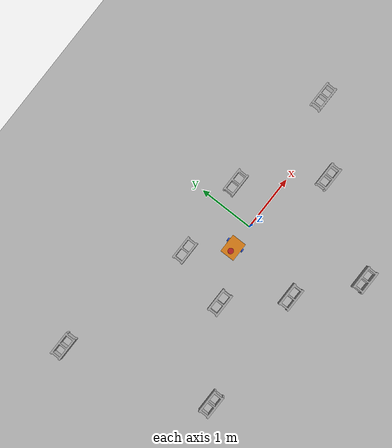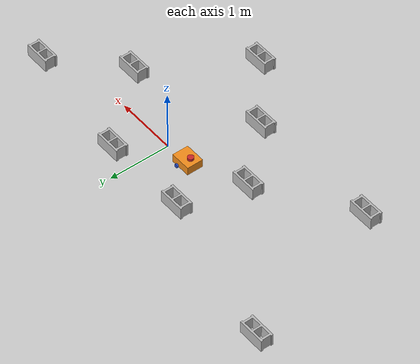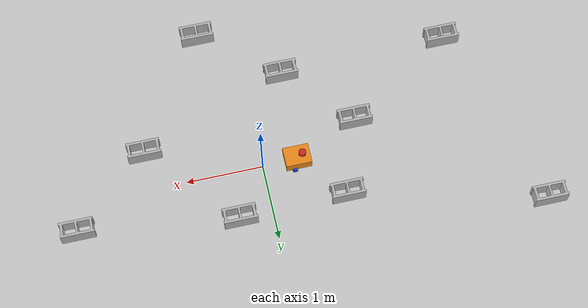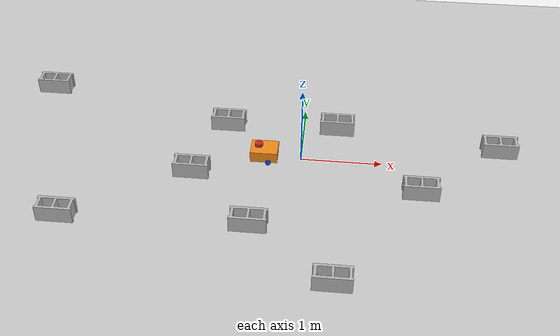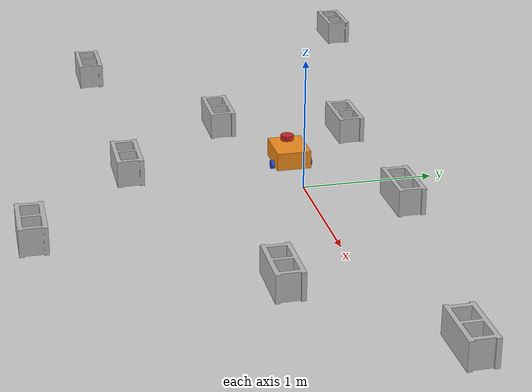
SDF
<sdf version="1.7">
 <world name="default">
  <light name="sun" type="directional">
   <pose>0 0 10 0 -0 0</pose>
   <diffuse>0.8 0.8 0.8 1</diffuse>
   <specular>0.2 0.2 0.2 1</specular>
   <attenuation>
    <range>1000</range>
    <constant>0.9</constant>
    <linear>0.01</linear>
    <quadratic>0.001</quadratic>
   </attenuation>
   <direction>-0.5 0.1 -0.9</direction>
   <spot><inner_angle>0</inner_angle><outer_angle>0</outer_angle><falloff>0</falloff></spot>
  </light>
  <model name="ground_plane">
   <static>1</static>
   <link name="link">
    <collision name="collision">
     <geometry><plane><normal>0 0 1</normal><size>100 100</size></plane></geometry>
     <surface>
      <contact><collide_bitmask>65535</collide_bitmask></contact>
      <friction><ode><mu>100</mu><mu2>50</mu2></ode></friction>
     </surface>
    </collision>
    <visual name="visual">
     <cast_shadows>0</cast_shadows>
     <geometry><plane><normal>0 0 1</normal><size>100 100</size></plane></geometry>
     <material>
      <script><uri>file://media/materials/scripts/gazebo.material</uri><name>Gazebo/Grey</name></script>
     </material>
    </visual>
   </link>
  </model>
  <gravity>0 0 -9.8</gravity>
  <magnetic_field>6e-06 2.3e-05 -4.2e-05</magnetic_field>
  <atmosphere type="adiabatic"/>
  <physics type="ode">
   <max_step_size>0.001</max_step_size>
   <real_time_factor>1</real_time_factor>
   <real_time_update_rate>1000</real_time_update_rate>
  </physics>
  <scene><ambient>0.4 0.4 0.4 1</ambient><background>0.7 0.7 0.7 1</background><shadows>1</shadows></scene>
  <audio><device>default</device></audio>
  <spherical_coordinates>
   <surface_model>EARTH_WGS84</surface_model>
   <latitude_deg>0</latitude_deg>
   <longitude_deg>0</longitude_deg>
   <elevation>0</elevation>
   <heading_deg>0</heading_deg>
  </spherical_coordinates>
  <model name="my_bot">
   <link name="base_link">
    <inertial>
     <pose>-0.071082 0 0.075033 0 -0 0</pose>
     <mass>0.61</mass>
     <inertia>
      <ixx>0.00482981</ixx>
      <ixy>0</ixy>
      <ixz>0.000516598</ixz>
      <iyy>0.00702444</iyy>
      <iyz>0</iyz>
      <izz>0.0081721</izz>
     </inertia>
    </inertial>
    <collision name="base_link_fixed_joint_lump__chassis_collision">
     <pose>-0.0585 0 0.059 0 -0 0</pose>
     <geometry><box><size>0.335 0.265 0.138</size></box></geometry>
    </collision>
    <collision name="base_link_fixed_joint_lump__caster_wheel_collision_1">
     <pose>-0.151 0 -0.023 0 -0 0</pose>
     <geometry><sphere><radius>0.01</radius></sphere></geometry>
     <surface><friction><ode><mu>0.001</mu><mu2>0.001</mu2></ode></friction></surface>
    </collision>
    <collision name="base_link_fixed_joint_lump__laser_frame_collision_2">
     <pose>-0.126 0 0.165 0 -0 0</pose>
     <geometry><cylinder><length>0.04</length><radius>0.05</radius></cylinder></geometry>
    </collision>
    <visual name="base_link_fixed_joint_lump__chassis_visual">
     <pose>-0.0585 0 0.059 0 -0 0</pose>
     <geometry><box><size>0.335 0.265 0.138</size></box></geometry>
     <material>
      <script><name>Gazebo/Orange</name><uri>file://media/materials/scripts/gazebo.material</uri></script>
     </material>
    </visual>
    <visual name="base_link_fixed_joint_lump__caster_wheel_visual_1">
     <pose>-0.151 0 -0.023 0 -0 0</pose>
     <geometry><sphere><radius>0.01</radius></sphere></geometry>
     <material>
      <script><name>Gazebo/White</name><uri>file://media/materials/scripts/gazebo.material</uri></script>
     </material>
    </visual>
    <visual name="base_link_fixed_joint_lump__laser_frame_visual_2">
     <pose>-0.126 0 0.165 0 -0 0</pose>
     <geometry><cylinder><length>0.04</length><radius>0.05</radius></cylinder></geometry>
     <material>
      <script><name>Gazebo/Red</name><uri>file://media/materials/scripts/gazebo.material</uri></script>
     </material>
    </visual>
    <sensor name="laser" type="ray">
     <visualize>1</visualize>
     <update_rate>10</update_rate>
     <ray>
      <scan>
       <horizontal>
        <samples>360</samples>
        <min_angle>-3.14</min_angle>
        <max_angle>3.14</max_angle>
        <resolution>1</resolution>
       </horizontal>
       <vertical><samples>1</samples><min_angle>0</min_angle><max_angle>0</max_angle></vertical>
      </scan>
      <range><min>0.3</min><max>12</max></range>
     </ray>
     <plugin name="laser_controller" filename="libgazebo_ros_ray_sensor.so">
      <ros><argument>~/out:=scan</argument></ros>
      <output_type>sensor_msgs/LaserScan</output_type>
      <frame_name>laser_frame</frame_name>
     </plugin>
     <pose>-0.126 0 0.165 0 -0 0</pose>
    </sensor>
   </link>
   <joint name="left_wheel_joint" type="revolute">
    <pose relative_to="base_link">0 0.1485 0 -1.5708 0 0</pose>
    <parent>base_link</parent>
    <child>left_wheel</child>
    <axis>
     <xyz>0 0 1</xyz>
     <limit><lower>-1e+16</lower><upper>1e+16</upper></limit>
     <dynamics><spring_reference>0</spring_reference><spring_stiffness>0</spring_stiffness></dynamics>
    </axis>
   </joint>
   <link name="left_wheel">
    <pose relative_to="left_wheel_joint">0 0 0 0 -0 0</pose>
    <inertial>
     <mass>0.05</mass>
     <inertia>
      <ixx>1.64292e-05</ixx>
      <ixy>0</ixy>
      <ixz>0</ixz>
      <iyy>1.64292e-05</iyy>
      <iyz>0</iyz>
      <izz>2.7225e-05</izz>
     </inertia>
    </inertial>
    <collision name="left_wheel_collision">
     <geometry><sphere><radius>0.033</radius></sphere></geometry>
    </collision>
    <visual name="left_wheel_visual">
     <geometry><cylinder><length>0.026</length><radius>0.033</radius></cylinder></geometry>
     <material>
      <script><name>Gazebo/Blue</name><uri>file://media/materials/scripts/gazebo.material</uri></script>
     </material>
    </visual>
   </link>
   <joint name="right_wheel_joint" type="revolute">
    <pose relative_to="base_link">0 -0.1485 0 1.5708 -0 0</pose>
    <parent>base_link</parent>
    <child>right_wheel</child>
    <axis>
     <xyz>0 0 -1</xyz>
     <limit><lower>-1e+16</lower><upper>1e+16</upper></limit>
     <dynamics><spring_reference>0</spring_reference><spring_stiffness>0</spring_stiffness></dynamics>
    </axis>
   </joint>
   <link name="right_wheel">
    <pose relative_to="right_wheel_joint">0 0 0 0 -0 0</pose>
    <inertial>
     <mass>0.05</mass>
     <inertia>
      <ixx>1.64292e-05</ixx>
      <ixy>0</ixy>
      <ixz>0</ixz>
      <iyy>1.64292e-05</iyy>
      <iyz>0</iyz>
      <izz>2.7225e-05</izz>
     </inertia>
    </inertial>
    <collision name="right_wheel_collision">
     <geometry><sphere><radius>0.033</radius></sphere></geometry>
    </collision>
    <visual name="right_wheel_visual">
     <geometry><cylinder><length>0.026</length><radius>0.033</radius></cylinder></geometry>
     <material>
      <script><name>Gazebo/Blue</name><uri>file://media/materials/scripts/gazebo.material</uri></script>
     </material>
    </visual>
   </link>
   <static>0</static>
   <plugin name="diff_drive" filename="libgazebo_ros_diff_drive.so">
    <left_joint>left_wheel_joint</left_joint>
    <right_joint>right_wheel_joint</right_joint>
    <wheel_separation>0.35</wheel_separation>
    <wheel_diameter>0.1</wheel_diameter>
    <max_wheel_torque>200</max_wheel_torque>
    <max_wheel_acceleration>10.0</max_wheel_acceleration>
    <odometry_frame>odom</odometry_frame>
    <robot_base_frame>base_link</robot_base_frame>
    <publish_odom>1</publish_odom>
    <publish_odom_tf>1</publish_odom_tf>
    <publish_wheel_tf>1</publish_wheel_tf>
   </plugin>
   <pose>-0.394195 0.001224 0.032996 0 2.5e-05 0.003197</pose>
  </model>
  <model name="cinder_block">
   <link name="link">
    <inertial>
     <pose>0 0 0.1016 0 -0 0</pose>
     <mass>5</mass>
     <inertia>
      <ixx>0.028705</ixx>
      <ixy>0</ixy>
      <iyy>0.073708</iyy>
      <ixz>0</ixz>
      <iyz>0</iyz>
      <izz>0.06908</izz>
     </inertia>
    </inertial>
    <visual name="visual">
     <geometry><mesh><uri>model://cinder_block/meshes/cinder_block.dae</uri></mesh></geometry>
    </visual>
    <collision name="left">
     <pose>0 -0.08465 0.1016 0 -0 0</pose>
     <geometry><box><size>0.43495 0.0339 0.2032</size></box></geometry>
     <surface>
      <contact><ode><max_vel>0.1</max_vel><min_depth>0.001</min_depth></ode></contact>
      <friction><ode><mu>1</mu><mu2>1</mu2></ode></friction>
     </surface>
    </collision>
    <collision name="right">
     <pose>0 0.08465 0.1016 0 -0 0</pose>
     <geometry><box><size>0.43495 0.0339 0.2032</size></box></geometry>
     <surface>
      <contact><ode><max_vel>0.1</max_vel><min_depth>0.001</min_depth></ode></contact>
      <friction><ode><mu>1</mu><mu2>1</mu2></ode></friction>
     </surface>
    </collision>
    <collision name="front">
     <pose>0.18625 0 0.1016 0 -0 0</pose>
     <geometry><box><size>0.0339 0.1354 0.203</size></box></geometry>
     <surface>
      <contact><ode><max_vel>0.1</max_vel><min_depth>0.001</min_depth></ode></contact>
      <friction><ode><mu>1</mu><mu2>1</mu2></ode></friction>
     </surface>
    </collision>
    <collision name="middle">
     <pose>0 0 0.1016 0 -0 0</pose>
     <geometry><box><size>0.0339 0.1354 0.203</size></box></geometry>
     <surface>
      <contact><ode><max_vel>0.1</max_vel><min_depth>0.001</min_depth></ode></contact>
      <friction><ode><mu>1</mu><mu2>1</mu2></ode></friction>
     </surface>
    </collision>
    <collision name="back">
     <pose>-0.18625 0 0.1016 0 -0 0</pose>
     <geometry><box><size>0.0339 0.1354 0.203</size></box></geometry>
     <surface>
      <contact><ode><max_vel>0.1</max_vel><min_depth>0.001</min_depth></ode></contact>
      <friction><ode><mu>1</mu><mu2>1</mu2></ode></friction>
     </surface>
    </collision>
   </link>
   <pose>-0.977687 0.600716 -6e-06 -1e-06 2.8e-05 -0</pose>
  </model>
  <model name="cinder_block_0">
   <link name="link">
    <inertial>
     <pose>0 0 0.1016 0 -0 0</pose>
     <mass>5</mass>
     <inertia>
      <ixx>0.028705</ixx>
      <ixy>0</ixy>
      <iyy>0.073708</iyy>
      <ixz>0</ixz>
      <iyz>0</iyz>
      <izz>0.06908</izz>
     </inertia>
    </inertial>
    <visual name="visual">
     <geometry><mesh><uri>model://cinder_block/meshes/cinder_block.dae</uri></mesh></geometry>
    </visual>
    <collision name="left">
     <pose>0 -0.08465 0.1016 0 -0 0</pose>
     <geometry><box><size>0.43495 0.0339 0.2032</size></box></geometry>
     <surface>
      <contact><ode><max_vel>0.1</max_vel><min_depth>0.001</min_depth></ode></contact>
      <friction><ode><mu>1</mu><mu2>1</mu2></ode></friction>
     </surface>
    </collision>
    <collision name="right">
     <pose>0 0.08465 0.1016 0 -0 0</pose>
     <geometry><box><size>0.43495 0.0339 0.2032</size></box></geometry>
     <surface>
      <contact><ode><max_vel>0.1</max_vel><min_depth>0.001</min_depth></ode></contact>
      <friction><ode><mu>1</mu><mu2>1</mu2></ode></friction>
     </surface>
    </collision>
    <collision name="front">
     <pose>0.18625 0 0.1016 0 -0 0</pose>
     <geometry><box><size>0.0339 0.1354 0.203</size></box></geometry>
     <surface>
      <contact><ode><max_vel>0.1</max_vel><min_depth>0.001</min_depth></ode></contact>
      <friction><ode><mu>1</mu><mu2>1</mu2></ode></friction>
     </surface>
    </collision>
    <collision name="middle">
     <pose>0 0 0.1016 0 -0 0</pose>
     <geometry><box><size>0.0339 0.1354 0.203</size></box></geometry>
     <surface>
      <contact><ode><max_vel>0.1</max_vel><min_depth>0.001</min_depth></ode></contact>
      <friction><ode><mu>1</mu><mu2>1</mu2></ode></friction>
     </surface>
    </collision>
    <collision name="back">
     <pose>-0.18625 0 0.1016 0 -0 0</pose>
     <geometry><box><size>0.0339 0.1354 0.203</size></box></geometry>
     <surface>
      <contact><ode><max_vel>0.1</max_vel><min_depth>0.001</min_depth></ode></contact>
      <friction><ode><mu>1</mu><mu2>1</mu2></ode></friction>
     </surface>
    </collision>
   </link>
   <pose>-1.30271 -0.390411 -6e-06 -1e-06 2.8e-05 -0</pose>
  </model>
  <model name="cinder_block_1">
   <link name="link">
    <inertial>
     <pose>0 0 0.1016 0 -0 0</pose>
     <mass>5</mass>
     <inertia>
      <ixx>0.028705</ixx>
      <ixy>0</ixy>
      <iyy>0.073708</iyy>
      <ixz>0</ixz>
      <iyz>0</iyz>
      <izz>0.06908</izz>
     </inertia>
    </inertial>
    <visual name="visual">
     <geometry><mesh><uri>model://cinder_block/meshes/cinder_block.dae</uri></mesh></geometry>
    </visual>
    <collision name="left">
     <pose>0 -0.08465 0.1016 0 -0 0</pose>
     <geometry><box><size>0.43495 0.0339 0.2032</size></box></geometry>
     <surface>
      <contact><ode><max_vel>0.1</max_vel><min_depth>0.001</min_depth></ode></contact>
      <friction><ode><mu>1</mu><mu2>1</mu2></ode></friction>
     </surface>
    </collision>
    <collision name="right">
     <pose>0 0.08465 0.1016 0 -0 0</pose>
     <geometry><box><size>0.43495 0.0339 0.2032</size></box></geometry>
     <surface>
      <contact><ode><max_vel>0.1</max_vel><min_depth>0.001</min_depth></ode></contact>
      <friction><ode><mu>1</mu><mu2>1</mu2></ode></friction>
     </surface>
    </collision>
    <collision name="front">
     <pose>0.18625 0 0.1016 0 -0 0</pose>
     <geometry><box><size>0.0339 0.1354 0.203</size></box></geometry>
     <surface>
      <contact><ode><max_vel>0.1</max_vel><min_depth>0.001</min_depth></ode></contact>
      <friction><ode><mu>1</mu><mu2>1</mu2></ode></friction>
     </surface>
    </collision>
    <collision name="middle">
     <pose>0 0 0.1016 0 -0 0</pose>
     <geometry><box><size>0.0339 0.1354 0.203</size></box></geometry>
     <surface>
      <contact><ode><max_vel>0.1</max_vel><min_depth>0.001</min_depth></ode></contact>
      <friction><ode><mu>1</mu><mu2>1</mu2></ode></friction>
     </surface>
    </collision>
    <collision name="back">
     <pose>-0.18625 0 0.1016 0 -0 0</pose>
     <geometry><box><size>0.0339 0.1354 0.203</size></box></geometry>
     <surface>
      <contact><ode><max_vel>0.1</max_vel><min_depth>0.001</min_depth></ode></contact>
      <friction><ode><mu>1</mu><mu2>1</mu2></ode></friction>
     </surface>
    </collision>
   </link>
   <pose>0.425948 0.633581 -6e-06 -1e-06 2.8e-05 -0</pose>
  </model>
  <model name="cinder_block_2">
   <link name="link">
    <inertial>
     <pose>0 0 0.1016 0 -0 0</pose>
     <mass>5</mass>
     <inertia>
      <ixx>0.028705</ixx>
      <ixy>0</ixy>
      <iyy>0.073708</iyy>
      <ixz>0</ixz>
      <iyz>0</iyz>
      <izz>0.06908</izz>
     </inertia>
    </inertial>
    <visual name="visual">
     <geometry><mesh><uri>model://cinder_block/meshes/cinder_block.dae</uri></mesh></geometry>
    </visual>
    <collision name="left">
     <pose>0 -0.08465 0.1016 0 -0 0</pose>
     <geometry><box><size>0.43495 0.0339 0.2032</size></box></geometry>
     <surface>
      <contact><ode><max_vel>0.1</max_vel><min_depth>0.001</min_depth></ode></contact>
      <friction><ode><mu>1</mu><mu2>1</mu2></ode></friction>
     </surface>
    </collision>
    <collision name="right">
     <pose>0 0.08465 0.1016 0 -0 0</pose>
     <geometry><box><size>0.43495 0.0339 0.2032</size></box></geometry>
     <surface>
      <contact><ode><max_vel>0.1</max_vel><min_depth>0.001</min_depth></ode></contact>
      <friction><ode><mu>1</mu><mu2>1</mu2></ode></friction>
     </surface>
    </collision>
    <collision name="front">
     <pose>0.18625 0 0.1016 0 -0 0</pose>
     <geometry><box><size>0.0339 0.1354 0.203</size></box></geometry>
     <surface>
      <contact><ode><max_vel>0.1</max_vel><min_depth>0.001</min_depth></ode></contact>
      <friction><ode><mu>1</mu><mu2>1</mu2></ode></friction>
     </surface>
    </collision>
    <collision name="middle">
     <pose>0 0 0.1016 0 -0 0</pose>
     <geometry><box><size>0.0339 0.1354 0.203</size></box></geometry>
     <surface>
      <contact><ode><max_vel>0.1</max_vel><min_depth>0.001</min_depth></ode></contact>
      <friction><ode><mu>1</mu><mu2>1</mu2></ode></friction>
     </surface>
    </collision>
    <collision name="back">
     <pose>-0.18625 0 0.1016 0 -0 0</pose>
     <geometry><box><size>0.0339 0.1354 0.203</size></box></geometry>
     <surface>
      <contact><ode><max_vel>0.1</max_vel><min_depth>0.001</min_depth></ode></contact>
      <friction><ode><mu>1</mu><mu2>1</mu2></ode></friction>
     </surface>
    </collision>
   </link>
   <pose>1.45443 -0.519991 -6e-06 -1e-06 2.8e-05 -0</pose>
  </model>
  <model name="cinder_block_3">
   <link name="link">
    <inertial>
     <pose>0 0 0.1016 0 -0 0</pose>
     <mass>5</mass>
     <inertia>
      <ixx>0.028705</ixx>
      <ixy>0</ixy>
      <iyy>0.073708</iyy>
      <ixz>0</ixz>
      <iyz>0</iyz>
      <izz>0.06908</izz>
     </inertia>
    </inertial>
    <visual name="visual">
     <geometry><mesh><uri>model://cinder_block/meshes/cinder_block.dae</uri></mesh></geometry>
    </visual>
    <collision name="left">
     <pose>0 -0.08465 0.1016 0 -0 0</pose>
     <geometry><box><size>0.43495 0.0339 0.2032</size></box></geometry>
     <surface>
      <contact><ode><max_vel>0.1</max_vel><min_depth>0.001</min_depth></ode></contact>
      <friction><ode><mu>1</mu><mu2>1</mu2></ode></friction>
     </surface>
    </collision>
    <collision name="right">
     <pose>0 0.08465 0.1016 0 -0 0</pose>
     <geometry><box><size>0.43495 0.0339 0.2032</size></box></geometry>
     <surface>
      <contact><ode><max_vel>0.1</max_vel><min_depth>0.001</min_depth></ode></contact>
      <friction><ode><mu>1</mu><mu2>1</mu2></ode></friction>
     </surface>
    </collision>
    <collision name="front">
     <pose>0.18625 0 0.1016 0 -0 0</pose>
     <geometry><box><size>0.0339 0.1354 0.203</size></box></geometry>
     <surface>
      <contact><ode><max_vel>0.1</max_vel><min_depth>0.001</min_depth></ode></contact>
      <friction><ode><mu>1</mu><mu2>1</mu2></ode></friction>
     </surface>
    </collision>
    <collision name="middle">
     <pose>0 0 0.1016 0 -0 0</pose>
     <geometry><box><size>0.0339 0.1354 0.203</size></box></geometry>
     <surface>
      <contact><ode><max_vel>0.1</max_vel><min_depth>0.001</min_depth></ode></contact>
      <friction><ode><mu>1</mu><mu2>1</mu2></ode></friction>
     </surface>
    </collision>
    <collision name="back">
     <pose>-0.18625 0 0.1016 0 -0 0</pose>
     <geometry><box><size>0.0339 0.1354 0.203</size></box></geometry>
     <surface>
      <contact><ode><max_vel>0.1</max_vel><min_depth>0.001</min_depth></ode></contact>
      <friction><ode><mu>1</mu><mu2>1</mu2></ode></friction>
     </surface>
    </collision>
   </link>
   <pose>0.477693 -2.05021 -6e-06 0 2.8e-05 0</pose>
  </model>
  <model name="cinder_block_4">
   <link name="link">
    <inertial>
     <pose>0 0 0.1016 0 -0 0</pose>
     <mass>5</mass>
     <inertia>
      <ixx>0.028705</ixx>
      <ixy>0</ixy>
      <iyy>0.073708</iyy>
      <ixz>0</ixz>
      <iyz>0</iyz>
      <izz>0.06908</izz>
     </inertia>
    </inertial>
    <visual name="visual">
     <geometry><mesh><uri>model://cinder_block/meshes/cinder_block.dae</uri></mesh></geometry>
    </visual>
    <collision name="left">
     <pose>0 -0.08465 0.1016 0 -0 0</pose>
     <geometry><box><size>0.43495 0.0339 0.2032</size></box></geometry>
     <surface>
      <contact><ode><max_vel>0.1</max_vel><min_depth>0.001</min_depth></ode></contact>
      <friction><ode><mu>1</mu><mu2>1</mu2></ode></friction>
     </surface>
    </collision>
    <collision name="right">
     <pose>0 0.08465 0.1016 0 -0 0</pose>
     <geometry><box><size>0.43495 0.0339 0.2032</size></box></geometry>
     <surface>
      <contact><ode><max_vel>0.1</max_vel><min_depth>0.001</min_depth></ode></contact>
      <friction><ode><mu>1</mu><mu2>1</mu2></ode></friction>
     </surface>
    </collision>
    <collision name="front">
     <pose>0.18625 0 0.1016 0 -0 0</pose>
     <geometry><box><size>0.0339 0.1354 0.203</size></box></geometry>
     <surface>
      <contact><ode><max_vel>0.1</max_vel><min_depth>0.001</min_depth></ode></contact>
      <friction><ode><mu>1</mu><mu2>1</mu2></ode></friction>
     </surface>
    </collision>
    <collision name="middle">
     <pose>0 0 0.1016 0 -0 0</pose>
     <geometry><box><size>0.0339 0.1354 0.203</size></box></geometry>
     <surface>
      <contact><ode><max_vel>0.1</max_vel><min_depth>0.001</min_depth></ode></contact>
      <friction><ode><mu>1</mu><mu2>1</mu2></ode></friction>
     </surface>
    </collision>
    <collision name="back">
     <pose>-0.18625 0 0.1016 0 -0 0</pose>
     <geometry><box><size>0.0339 0.1354 0.203</size></box></geometry>
     <surface>
      <contact><ode><max_vel>0.1</max_vel><min_depth>0.001</min_depth></ode></contact>
      <friction><ode><mu>1</mu><mu2>1</mu2></ode></friction>
     </surface>
    </collision>
   </link>
   <pose>-0.505494 -1.25913 -6e-06 0 2.8e-05 0</pose>
  </model>
  <model name="cinder_block_5">
   <link name="link">
    <inertial>
     <pose>0 0 0.1016 0 -0 0</pose>
     <mass>5</mass>
     <inertia>
      <ixx>0.028705</ixx>
      <ixy>0</ixy>
      <iyy>0.073708</iyy>
      <ixz>0</ixz>
      <iyz>0</iyz>
      <izz>0.06908</izz>
     </inertia>
    </inertial>
    <visual name="visual">
     <geometry><mesh><uri>model://cinder_block/meshes/cinder_block.dae</uri></mesh></geometry>
    </visual>
    <collision name="left">
     <pose>0 -0.08465 0.1016 0 -0 0</pose>
     <geometry><box><size>0.43495 0.0339 0.2032</size></box></geometry>
     <surface>
      <contact><ode><max_vel>0.1</max_vel><min_depth>0.001</min_depth></ode></contact>
      <friction><ode><mu>1</mu><mu2>1</mu2></ode></friction>
     </surface>
    </collision>
    <collision name="right">
     <pose>0 0.08465 0.1016 0 -0 0</pose>
     <geometry><box><size>0.43495 0.0339 0.2032</size></box></geometry>
     <surface>
      <contact><ode><max_vel>0.1</max_vel><min_depth>0.001</min_depth></ode></contact>
      <friction><ode><mu>1</mu><mu2>1</mu2></ode></friction>
     </surface>
    </collision>
    <collision name="front">
     <pose>0.18625 0 0.1016 0 -0 0</pose>
     <geometry><box><size>0.0339 0.1354 0.203</size></box></geometry>
     <surface>
      <contact><ode><max_vel>0.1</max_vel><min_depth>0.001</min_depth></ode></contact>
      <friction><ode><mu>1</mu><mu2>1</mu2></ode></friction>
     </surface>
    </collision>
    <collision name="middle">
     <pose>0 0 0.1016 0 -0 0</pose>
     <geometry><box><size>0.0339 0.1354 0.203</size></box></geometry>
     <surface>
      <contact><ode><max_vel>0.1</max_vel><min_depth>0.001</min_depth></ode></contact>
      <friction><ode><mu>1</mu><mu2>1</mu2></ode></friction>
     </surface>
    </collision>
    <collision name="back">
     <pose>-0.18625 0 0.1016 0 -0 0</pose>
     <geometry><box><size>0.0339 0.1354 0.203</size></box></geometry>
     <surface>
      <contact><ode><max_vel>0.1</max_vel><min_depth>0.001</min_depth></ode></contact>
      <friction><ode><mu>1</mu><mu2>1</mu2></ode></friction>
     </surface>
    </collision>
   </link>
   <pose>-3.46657 1.20811 -6e-06 0 2.8e-05 0</pose>
  </model>
  <model name="cinder_block_6">
   <link name="link">
    <inertial>
     <pose>0 0 0.1016 0 -0 0</pose>
     <mass>5</mass>
     <inertia>
      <ixx>0.028705</ixx>
      <ixy>0</ixy>
      <iyy>0.073708</iyy>
      <ixz>0</ixz>
      <iyz>0</iyz>
      <izz>0.06908</izz>
     </inertia>
    </inertial>
    <visual name="visual">
     <geometry><mesh><uri>model://cinder_block/meshes/cinder_block.dae</uri></mesh></geometry>
    </visual>
    <collision name="left">
     <pose>0 -0.08465 0.1016 0 -0 0</pose>
     <geometry><box><size>0.43495 0.0339 0.2032</size></box></geometry>
     <surface>
      <contact><ode><max_vel>0.1</max_vel><min_depth>0.001</min_depth></ode></contact>
      <friction><ode><mu>1</mu><mu2>1</mu2></ode></friction>
     </surface>
    </collision>
    <collision name="right">
     <pose>0 0.08465 0.1016 0 -0 0</pose>
     <geometry><box><size>0.43495 0.0339 0.2032</size></box></geometry>
     <surface>
      <contact><ode><max_vel>0.1</max_vel><min_depth>0.001</min_depth></ode></contact>
      <friction><ode><mu>1</mu><mu2>1</mu2></ode></friction>
     </surface>
    </collision>
    <collision name="front">
     <pose>0.18625 0 0.1016 0 -0 0</pose>
     <geometry><box><size>0.0339 0.1354 0.203</size></box></geometry>
     <surface>
      <contact><ode><max_vel>0.1</max_vel><min_depth>0.001</min_depth></ode></contact>
      <friction><ode><mu>1</mu><mu2>1</mu2></ode></friction>
     </surface>
    </collision>
    <collision name="middle">
     <pose>0 0 0.1016 0 -0 0</pose>
     <geometry><box><size>0.0339 0.1354 0.203</size></box></geometry>
     <surface>
      <contact><ode><max_vel>0.1</max_vel><min_depth>0.001</min_depth></ode></contact>
      <friction><ode><mu>1</mu><mu2>1</mu2></ode></friction>
     </surface>
    </collision>
    <collision name="back">
     <pose>-0.18625 0 0.1016 0 -0 0</pose>
     <geometry><box><size>0.0339 0.1354 0.203</size></box></geometry>
     <surface>
      <contact><ode><max_vel>0.1</max_vel><min_depth>0.001</min_depth></ode></contact>
      <friction><ode><mu>1</mu><mu2>1</mu2></ode></friction>
     </surface>
    </collision>
   </link>
   <pose>2.45498 0.368173 -6e-06 0 2.8e-05 0</pose>
  </model>
  <model name="cinder_block_7">
   <link name="link">
    <inertial>
     <pose>0 0 0.1016 0 -0 0</pose>
     <mass>5</mass>
     <inertia>
      <ixx>0.028705</ixx>
      <ixy>0</ixy>
      <iyy>0.073708</iyy>
      <ixz>0</ixz>
      <iyz>0</iyz>
      <izz>0.06908</izz>
     </inertia>
    </inertial>
    <visual name="visual">
     <geometry><mesh><uri>model://cinder_block/meshes/cinder_block.dae</uri></mesh></geometry>
    </visual>
    <collision name="left">
     <pose>0 -0.08465 0.1016 0 -0 0</pose>
     <geometry><box><size>0.43495 0.0339 0.2032</size></box></geometry>
     <surface>
      <contact><ode><max_vel>0.1</max_vel><min_depth>0.001</min_depth></ode></contact>
      <friction><ode><mu>1</mu><mu2>1</mu2></ode></friction>
     </surface>
    </collision>
    <collision name="right">
     <pose>0 0.08465 0.1016 0 -0 0</pose>
     <geometry><box><size>0.43495 0.0339 0.2032</size></box></geometry>
     <surface>
      <contact><ode><max_vel>0.1</max_vel><min_depth>0.001</min_depth></ode></contact>
      <friction><ode><mu>1</mu><mu2>1</mu2></ode></friction>
     </surface>
    </collision>
    <collision name="front">
     <pose>0.18625 0 0.1016 0 -0 0</pose>
     <geometry><box><size>0.0339 0.1354 0.203</size></box></geometry>
     <surface>
      <contact><ode><max_vel>0.1</max_vel><min_depth>0.001</min_depth></ode></contact>
      <friction><ode><mu>1</mu><mu2>1</mu2></ode></friction>
     </surface>
    </collision>
    <collision name="middle">
     <pose>0 0 0.1016 0 -0 0</pose>
     <geometry><box><size>0.0339 0.1354 0.203</size></box></geometry>
     <surface>
      <contact><ode><max_vel>0.1</max_vel><min_depth>0.001</min_depth></ode></contact>
      <friction><ode><mu>1</mu><mu2>1</mu2></ode></friction>
     </surface>
    </collision>
    <collision name="back">
     <pose>-0.18625 0 0.1016 0 -0 0</pose>
     <geometry><box><size>0.0339 0.1354 0.203</size></box></geometry>
     <surface>
      <contact><ode><max_vel>0.1</max_vel><min_depth>0.001</min_depth></ode></contact>
      <friction><ode><mu>1</mu><mu2>1</mu2></ode></friction>
     </surface>
    </collision>
   </link>
   <pose>-2.71252 -1.31197 -6e-06 0 2.8e-05 0</pose>
  </model>
 </world>
</sdf>
